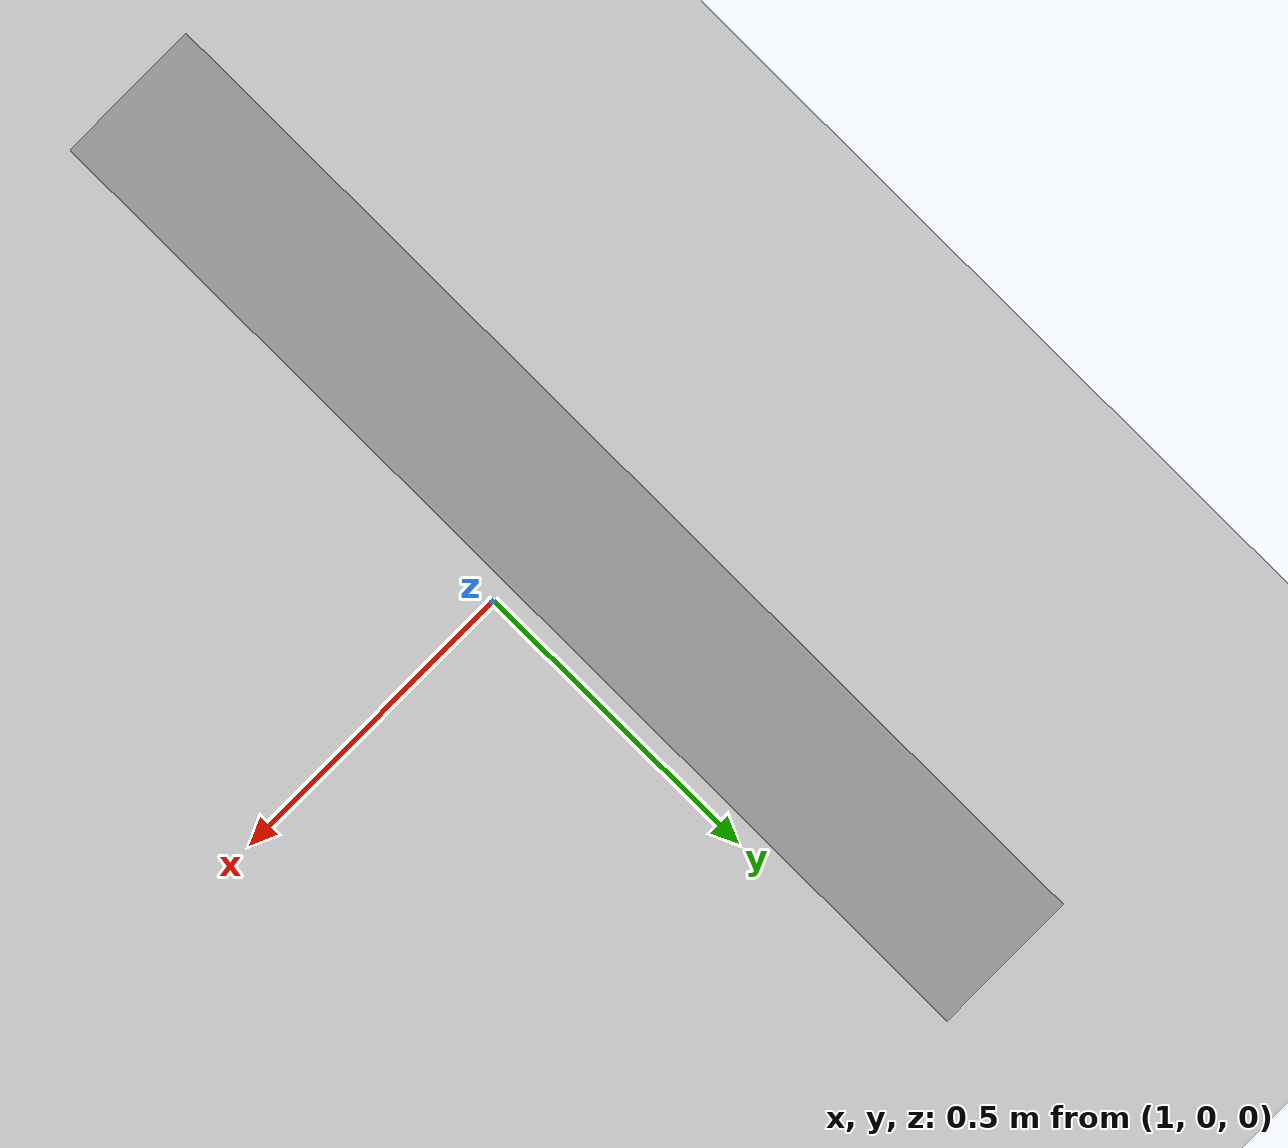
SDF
<?xml version="1.0" ?>
<sdf version="1.4">
  <!-- We use a custom world for the iiwa so that the camera angle is launched correctly. -->
  <!-- One can change this world to his needs or use another one. -->

  <world name="drawing">

    <include>
      <uri>model://ground_plane</uri>
    </include>

    <!-- Global light source -->
    <include>
      <uri>model://sun</uri>
    </include>

    <physics name="default_physics" default="0" type="ode">
      <max_step_size>0.001</max_step_size>
      <real_time_factor>1</real_time_factor>
      <real_time_update_rate>1000</real_time_update_rate>
      <ode>
        <solver>
          <type>quick</type>
          <iters>50</iters>
          <sor>1.0</sor> <!-- Important, see issue #2209 -->
          <use_dynamic_moi_rescaling>false</use_dynamic_moi_rescaling>
        </solver>
      </ode>
    </physics>

    <!-- Focus camera -->
    <gui fullscreen='0'>
      <camera name='user_camera'>
	<pose>4.927360 -4.376610 3.740080 0.000000 0.275643 2.356190</pose>
	<view_controller>orbit</view_controller>
      </camera>
    </gui>

    <model name='unit_box'>
      <link name='link'>
        <inertial>
          <mass>1</mass>
          <inertia>
            <ixx>0.166667</ixx>
            <ixy>0</ixy>
            <ixz>0</ixz>
            <iyy>0.166667</iyy>
            <iyz>0</iyz>
            <izz>0.166667</izz>
          </inertia>
          <pose frame=''>0 0 0 0 -0 0</pose>
        </inertial>
        <self_collide>0</self_collide>
        <enable_wind>0</enable_wind>
        <kinematic>0</kinematic>
        <pose frame=''>0 0 0 0 -0 0</pose>
        <gravity>1</gravity>
        <visual name='visual'>
          <geometry>
            <box>
              <size>0.2 1.5 1.5</size>
            </box>
          </geometry>
          <material>
            <script>
              <name>Gazebo/Grey</name>
              <uri>file://media/materials/scripts/gazebo.material</uri>
            </script>
            <ambient>1 1 1 0</ambient>
            <shader type='vertex'>
              <normal_map>__default__</normal_map>
            </shader>
            <diffuse>0.7 0.7 0.7 1</diffuse>
            <specular>0.01 0.01 0.01 1</specular>
            <emissive>0 0 0 1</emissive>
          </material>
          <pose frame=''>0 0 0 0 -0 0</pose>
          <transparency>0</transparency>
          <cast_shadows>1</cast_shadows>
        </visual>
        <collision name='collision'>
          <laser_retro>0</laser_retro>
          <max_contacts>10</max_contacts>
          <pose frame=''>0 0 0 0 -0 0</pose>
          <geometry>
            <box>
              <size>0.2 1.5 1.5</size>
            </box>
          </geometry>
          <surface>
            <friction>
              <ode>
                <mu>1</mu>
                <mu2>1</mu2>
                <fdir1>0 0 0</fdir1>
                <slip1>0</slip1>
                <slip2>0</slip2>
              </ode>
              <torsional>
                <coefficient>1</coefficient>
                <patch_radius>0</patch_radius>
                <surface_radius>0</surface_radius>
                <use_patch_radius>1</use_patch_radius>
                <ode>
                  <slip>0</slip>
                </ode>
              </torsional>
            </friction>
            <bounce>
              <restitution_coefficient>0</restitution_coefficient>
              <threshold>1e+06</threshold>
            </bounce>
            <contact>
              <collide_without_contact>0</collide_without_contact>
              <collide_without_contact_bitmask>1</collide_without_contact_bitmask>
              <collide_bitmask>1</collide_bitmask>
              <ode>
                <soft_cfm>0</soft_cfm>
                <soft_erp>0.2</soft_erp>
                <kp>1e+13</kp>
                <kd>1</kd>
                <max_vel>0.01</max_vel>
                <min_depth>0</min_depth>
              </ode>
              <bullet>
                <split_impulse>1</split_impulse>
                <split_impulse_penetration_threshold>-0.01</split_impulse_penetration_threshold>
                <soft_cfm>0</soft_cfm>
                <soft_erp>0.2</soft_erp>
                <kp>1e+13</kp>
                <kd>1</kd>
              </bullet>
            </contact>
          </surface>
        </collision>
      </link>
      <static>0</static>
      <allow_auto_disable>1</allow_auto_disable>
      <pose frame=''>0.85 0 0.75 0 0 0</pose>
    </model>

  </world>

</sdf>
